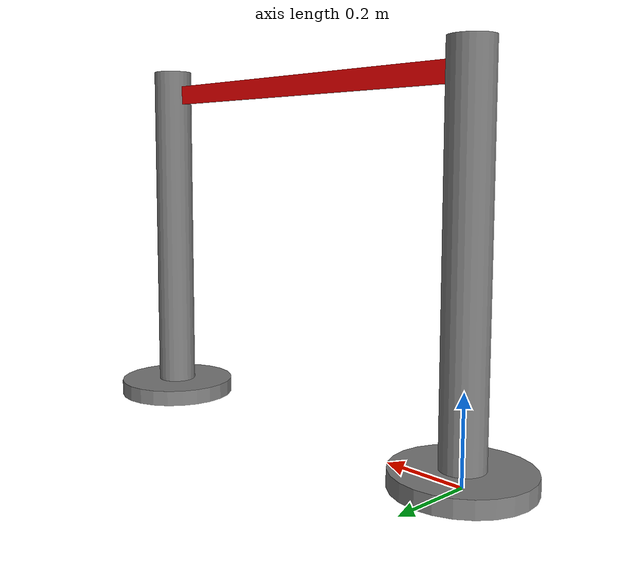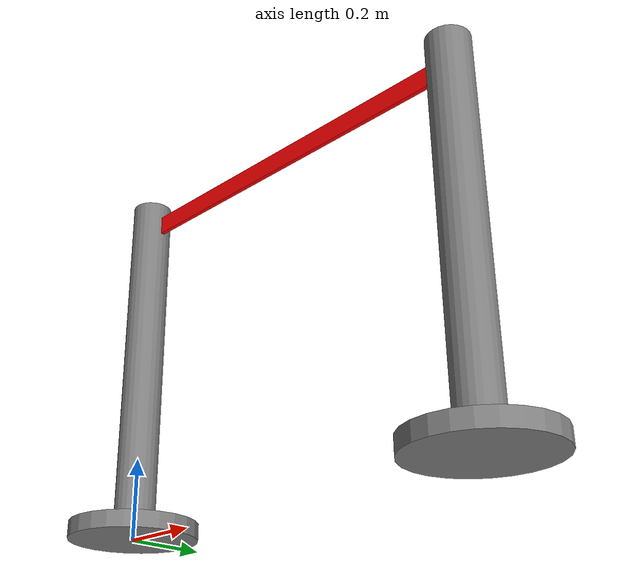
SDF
<?xml version="1.0" ?>
<sdf version='1.6'>
  <model name="barrier_with_belt_1">
    <static>true</static> <!-- Static model -->

    <!-- Base Plate_1 -->
    <link name="base1">
      <visual name="base1_visual">
        <geometry>
          <cylinder>
            <radius>0.155</radius> <!-- Diameter: 31 cm -->
            <length>0.04</length> <!-- Thickness: 4 cm -->
          </cylinder>
        </geometry>
        <material>
          <ambient>0.5 0.5 0.5 1</ambient> <!-- Grey color -->
        </material>
      </visual>
      <collision name="base1_collision">
        <geometry>
          <cylinder>
            <radius>0.155</radius>
            <length>0.04</length>
          </cylinder>
        </geometry>
      </collision>
      <pose>0 0 0.02 0 0 0</pose> <!-- Base at ground level -->
    </link>

    <!-- Base Plate_2 -->
    <link name="base2">
      <visual name="base2_visual">
        <geometry>
          <cylinder>
            <radius>0.155</radius> <!-- Diameter: 31 cm -->
            <length>0.04</length> <!-- Thickness: 4 cm -->
          </cylinder>
        </geometry>
        <material>
          <ambient>0.5 0.5 0.5 1</ambient> <!-- Grey color -->
        </material>
      </visual>
      <collision name="base2_collision">
        <geometry>
          <cylinder>
            <radius>0.155</radius>
            <length>0.04</length>
          </cylinder>
        </geometry>
      </collision>
      <pose>1 0 0.02 0 0 0</pose> <!-- Base at ground level -->
    </link>

    <!-- Pillar_1 -->
    <link name="cylinder1">
      <visual name="cylinder1_visual">
        <geometry>
          <cylinder>
            <radius>0.05</radius> <!-- Radius: 5 cm -->
            <length>0.89</length> <!-- Height: 89 cm -->
          </cylinder>
        </geometry>
        <material>
          <ambient>0.5 0.5 0.5 1</ambient> <!-- Grey color -->
        </material>
      </visual>
      <collision name="cylinder1_collision">
        <geometry>
          <cylinder>
            <radius>0.05</radius>
            <length>0.89</length>
          </cylinder>
        </geometry>
      </collision>
      <pose>0 0 0.46 0 0 0</pose> <!-- Placed on top of the base -->
    </link>

    <!-- Pillar_2 -->
    <link name="cylinder2">
      <visual name="cylinder2_visual">
        <geometry>
          <cylinder>
            <radius>0.05</radius> <!-- Radius: 5 cm -->
            <length>0.89</length> <!-- Height: 89 cm -->
          </cylinder>
        </geometry>
        <material>
          <ambient>0.5 0.5 0.5 1</ambient> <!-- Grey color -->
        </material>
      </visual>
      <collision name="cylinder2_collision">
        <geometry>
          <cylinder>
            <radius>0.05</radius>
            <length>0.89</length>
          </cylinder>
        </geometry>
      </collision>
      <pose>1 0 0.46 0 0 0</pose> <!-- Placed on top of the base -->
    </link>

    <!-- Belt -->
    <link name="tape">
      <visual name="tape_visual">
        <geometry>
          <box>
            <size>1.0 0.048 0.01</size> <!-- Length, Width, Thickness -->
          </box>
        </geometry>
        <material>
          <ambient>1 0 0 1</ambient> <!-- Red color -->
        </material>
      </visual>
      <collision name="tape_collision">
        <geometry>
          <box>
            <size>1.0 0.048 0.01</size>
          </box>
        </geometry>
      </collision>
      <pose>0.50 0 0.84 1.571 0 0</pose> <!-- Aligned with the pillar -->
    </link>

    <!-- Fixed Joints -->
    <joint name="cylinder1_to_base_1" type="fixed">
      <parent>base1</parent>
      <child>cylinder1</child>
    </joint>
    <joint name="cylinder2_to_base_2" type="fixed">
      <parent>base2</parent>
      <child>cylinder2</child>
    </joint>
    <joint name="cylinder1_to_tape" type="fixed">
      <parent>cylinder1</parent>
      <child>tape</child>
    </joint>
    <joint name="cylinder2_to_tape" type="fixed">
      <parent>cylinder2</parent>
      <child>tape</child>
    </joint>
  </model>
</sdf>
